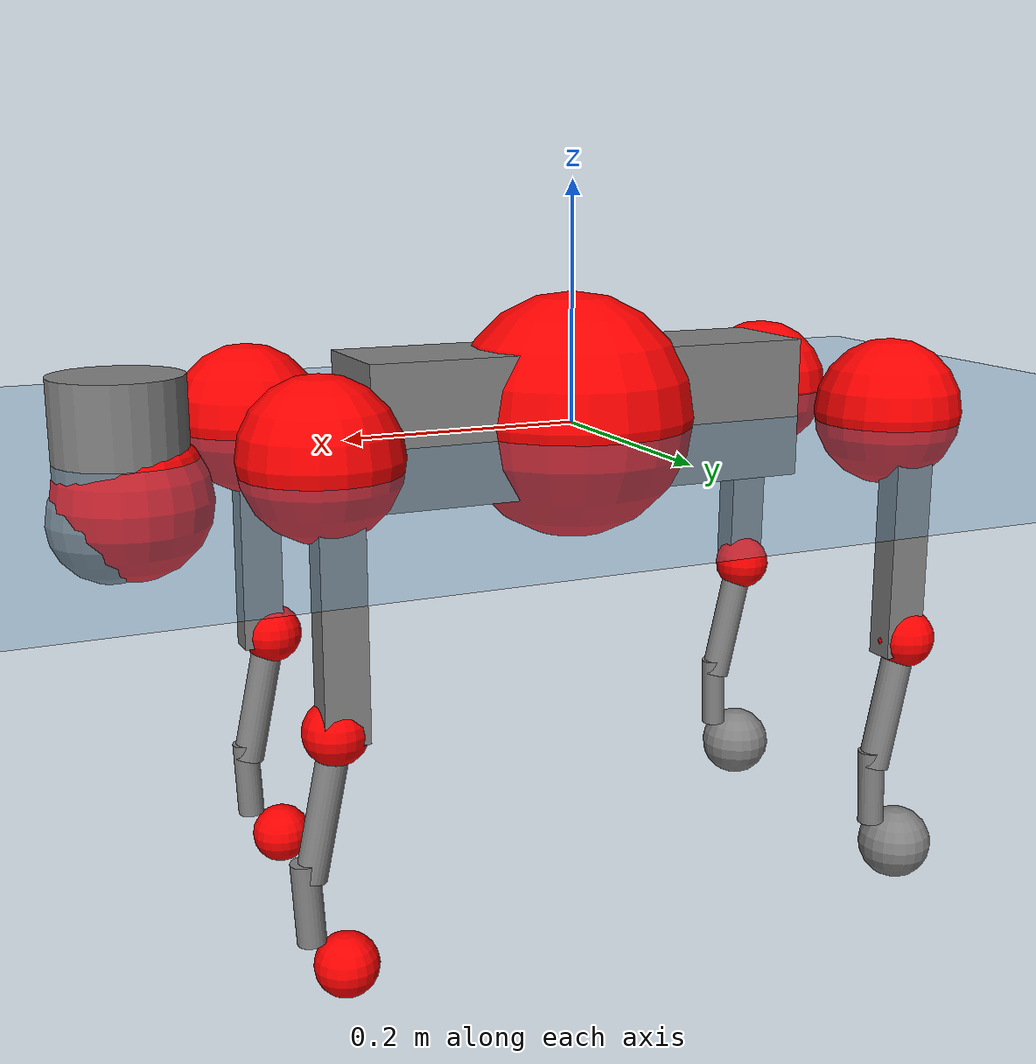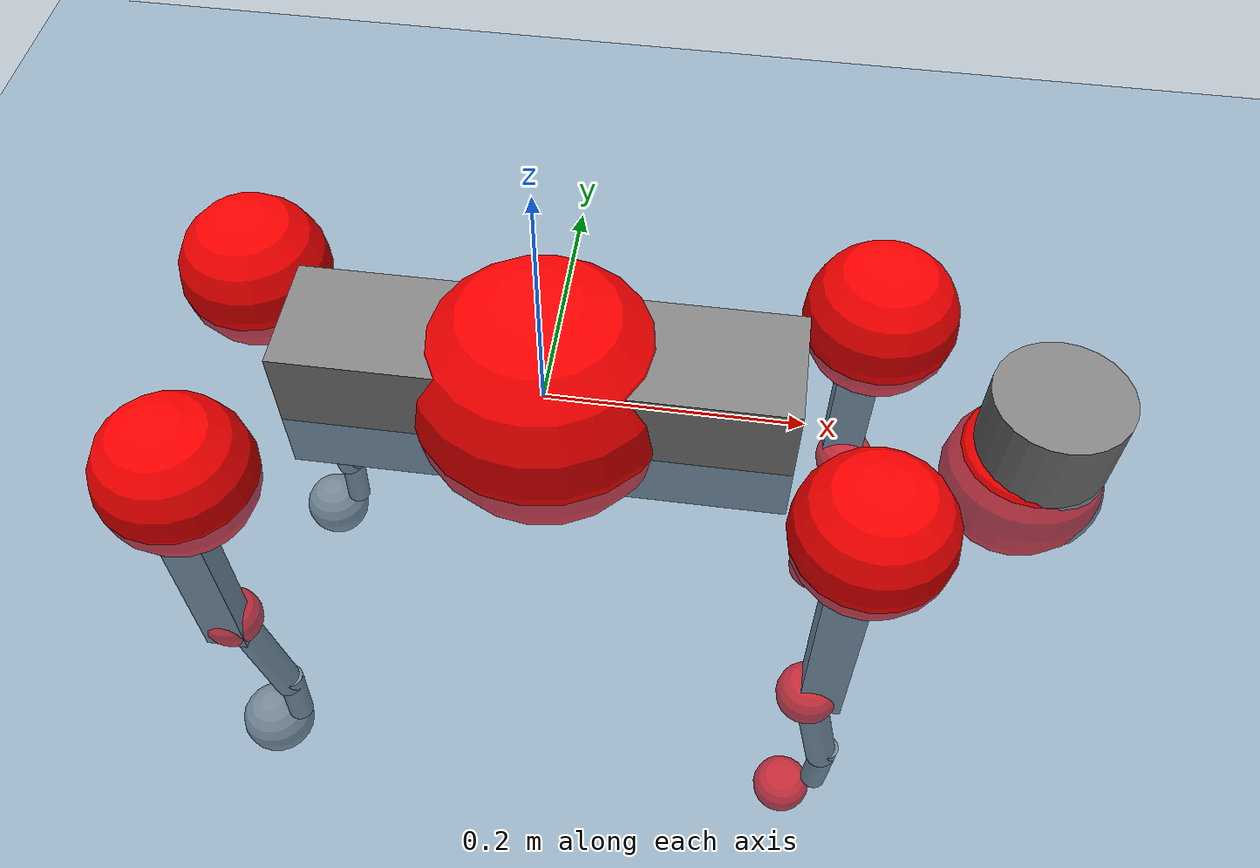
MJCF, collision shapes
<mujoco model="go2">
  <compiler angle="radian" assetdir="assets" balanceinertia="true" inertiafromgeom="false"/>

  <option timestep="0.005" density="1.2" viscosity="2e-05"/>

  <size nkey="1"/>

  <visual>
    <quality shadowsize="8192"/>
    <map shadowclip="0.5"/>
  </visual>

  <default>
    <default class="/">
      <geom contype="0" conaffinity="0" group="1" solref="-1000 -80"/>
      <site size="0.01 0.005 0.005" group="5"/>
      <general forcelimited="true" biastype="affine" gainprm="20" biasprm="0 -20 -0.5"/>
      <default class="go2">
        <joint armature="0.01" damping="0.01" frictionloss="0.2"/>
        <geom condim="1" margin="0.001"/>
        <default class="visual">
          <geom type="mesh" group="2"/>
        </default>
        <default class="collision">
          <geom group="3"/>
          <default class="foot">
            <geom size="0.022 0 0" condim="6" priority="1" friction="0.8 0.02 0.01" solimp="0.015 1 0.022"/>
          </default>
        </default>
        <default class="reward_collision_sphere">
          <geom group="5" rgba="1 0 0 1"/>
        </default>
      </default>
    </default>
  </default>

  <asset>
    <texture type="skybox" colorspace="auto" name="//unnamed_texture_0" builtin="gradient" rgb1="0.95 0.95 0.95" rgb2="0.95 0.95 0.95" width="100" height="600"/>
    <texture type="2d" colorspace="auto" name="texplane" builtin="checker" rgb1="0.345 0.575 0.748" rgb2="0.345 0.575 0.748" markrgb="1 1 1" width="512" height="512"/>
    <material name="MatPlane" class="/" texture="texplane" texuniform="true" texrepeat="2 2" specular="0.9"/>
    <material name="metal" class="/" rgba="0.9 0.95 0.95 1"/>
    <material name="black" class="/" rgba="0 0 0 1"/>
    <material name="white" class="/"/>
    <material name="gray" class="/" rgba="0.671705 0.692426 0.77427 1"/>
    <mesh name="base_0" class="/" file="base_0.obj"/>
    <mesh name="base_1" class="/" file="base_1.obj"/>
    <mesh name="base_2" class="/" file="base_2.obj"/>
    <mesh name="base_3" class="/" file="base_3.obj"/>
    <mesh name="base_4" class="/" file="base_4.obj"/>
    <mesh name="hip_0" class="/" file="hip_0.obj"/>
    <mesh name="hip_1" class="/" file="hip_1.obj"/>
    <mesh name="thigh_0" class="/" file="thigh_0.obj"/>
    <mesh name="thigh_1" class="/" file="thigh_1.obj"/>
    <mesh name="thigh_mirror_0" class="/" file="thigh_mirror_0.obj"/>
    <mesh name="thigh_mirror_1" class="/" file="thigh_mirror_1.obj"/>
    <mesh name="calf_0" class="/" file="calf_0.obj"/>
    <mesh name="calf_1" class="/" file="calf_1.obj"/>
    <mesh name="calf_mirror_0" class="/" file="calf_mirror_0.obj"/>
    <mesh name="calf_mirror_1" class="/" file="calf_mirror_1.obj"/>
    <mesh name="foot" class="/" file="foot.obj"/>
  </asset>

  <worldbody>
    <geom name="floor" class="/" size="100 100 0.125" type="plane" group="0" material="MatPlane"/>
    <light name="toplight_shadow" class="/" pos="0 0 5" dir="0.0990148 0.0990148 -0.990148" type="directional" ambient="0.04 0.04 0.04" diffuse="0.55 0.55 0.55" specular="0.12 0.12 0.12"/>
    <light name="toplight_fill" class="/" pos="0 0 5" dir="0.0990148 0.0990148 -0.990148" type="directional" castshadow="false" ambient="0.04 0.04 0.04" diffuse="0.3 0.3 0.3" specular="0.08 0.08 0.08"/>
    <body name="trunk" childclass="go2" pos="-5.4927e-05 -0.000312315 0.00710072" quat="1 -2.7112e-05 -0.000755745 0.000178547">
      <inertial pos="0.0289993 -0.0109231 -0.0129355" quat="-0.00218408 0.714212 -0.00193682 0.699923" mass="7.93729" diaginertia="0.394493 0.0540027 0.0151105"/>
      <joint name="//unnamed_joint_0" type="free" armature="0" damping="0" frictionloss="0"/>
      <geom name="//unnamed_geom_1" class="visual" material="black" mesh="base_0"/>
      <geom name="//unnamed_geom_2" class="visual" material="black" mesh="base_1"/>
      <geom name="//unnamed_geom_3" class="visual" material="black" mesh="base_2"/>
      <geom name="//unnamed_geom_4" class="visual" material="white" mesh="base_3"/>
      <geom name="//unnamed_geom_5" class="visual" material="gray" mesh="base_4"/>
      <geom name="trunk_1" class="collision" size="0.194097 0.0482404 0.0588172" type="box"/>
      <geom name="trunk_2" class="collision" size="0.051594 0.0464346" pos="0.375474 0 0.00902087" type="cylinder"/>
      <geom name="trunk_3" class="collision" size="0.0484984" pos="0.386013 0 -0.0541252"/>
      <geom name="//unnamed_geom_9" class="reward_collision_sphere" size="0.103188"/>
      <geom name="//unnamed_geom_10" class="reward_collision_sphere" size="0.0619128" pos="0.368887 0 -0.0405939"/>
      <site name="imu" pos="-0.0469336 0.0255525 0.0231368" size="0.0103188"/>
      <camera name="track" pos="0 -1.7522 0" quat="0.707107 0.707107 0 0" mode="trackcom"/>
      <camera name="ego_camera" pos="0.411045 0 0.0405939" quat="-0.5 -0.5 0.5 0.5"/>
      <body name="FL_hip" pos="0.252879 0.0468424 0.00160928" quat="1 0.000602886 -0.000483083 8.7275e-05">
        <inertial pos="0.00218903 0.000173352 0.00469673" quat="0.496612 0.499386 0.505504 0.498454" mass="0.777802" diaginertia="0.00357135 0.000334387 0.000273994"/>
        <joint name="FL_hip_joint" pos="0 0 0" axis="0.999999 -0.00110049 0.000710558" range="-0.972651 1.05649" armature="0.00703991" damping="0" frictionloss="0.297192"/>
        <geom name="//unnamed_geom_11" class="visual" material="metal" mesh="hip_0"/>
        <geom name="//unnamed_geom_12" class="visual" material="gray" mesh="hip_1"/>
        <geom name="//unnamed_geom_13" class="collision" size="0.0474665 0.0206376" pos="0 0.0700881 0" quat="0.707107 0.707107 0 0" type="cylinder"/>
        <geom name="//unnamed_geom_14" class="reward_collision_sphere" size="0.0619128" pos="0 0.0613271 0"/>
        <body name="FL_thigh" pos="-0.00332935 0.0842564 -0.00363215" quat="1 2.7382e-05 -3.38786e-05 6.30758e-05">
          <inertial pos="-0.00643013 -0.0206493 -0.0245158" quat="0.832426 0.08008 -0.0229429 0.547839" mass="1.39508" diaginertia="0.0229717 0.00304063 0.000674138"/>
          <joint name="FL_thigh_joint" pos="0 0 0" axis="0.015787 0.999801 0.0122012" stiffness="0.0118039" range="-1.4445 3.41643" armature="0.00920514" damping="0.0191578" frictionloss="0.214189"/>
          <geom name="//unnamed_geom_15" class="visual" material="metal" mesh="thigh_0"/>
          <geom name="//unnamed_geom_16" class="visual" material="gray" mesh="thigh_1"/>
          <geom name="//unnamed_geom_17" class="collision" size="0.109895 0.0126405 0.017542" pos="0 0 -0.0960722" quat="0.707107 0 0.707107 0" type="box"/>
          <body name="FL_calf" pos="0.00366699 -0.00690273 -0.199899" quat="0.999987 -0.00160849 0.00196099 0.00453425">
            <inertial pos="0.00715098 -0.000838757 -0.12841" quat="0.71065 0.00138581 -0.00447915 0.70353" mass="0.30064" diaginertia="0.00583968 0.000783713 3.52367e-05"/>
            <joint name="FL_calf_joint" pos="0 0 0" axis="0.00314916 0.999959 -0.0085177" stiffness="0.00601129" range="-2.71637 -0.830124" armature="0.0125162" damping="0" frictionloss="0.279954"/>
            <geom name="//unnamed_geom_18" class="visual" material="gray" mesh="calf_0"/>
            <geom name="//unnamed_geom_19" class="visual" material="black" mesh="calf_1"/>
            <geom name="FL_calf0" class="collision" size="0.0123826 0.0619128" pos="0.0105396 0 -0.0541252" quat="0.994493 0 -0.104807 0" type="cylinder"/>
            <geom name="//unnamed_geom_21" class="collision" size="0.0113507 0.0335361" pos="0.026349 0 -0.133509" quat="0.999688 0 0.0249974 0" type="cylinder"/>
            <geom name="//unnamed_geom_22" class="visual" pos="0 0 -0.192144" quat="1 0 0 0" material="black" mesh="foot"/>
            <geom name="FL_foot" class="foot" size="0.0151001" pos="-0.0026349 0 -0.192144"/>
            <geom name="//unnamed_geom_24" class="reward_collision_sphere" size="0.025797"/>
            <geom name="//unnamed_geom_25" class="reward_collision_sphere" size="0.025797" pos="-0.0026349 0 -0.192144"/>
            <site name="FL_foot" class="foot" pos="-0.0026349 0 -0.192144" size="0.0103188"/>
          </body>
        </body>
      </body>
      <body name="FR_hip" pos="0.2524 -0.0353262 -0.000498076" quat="0.999991 -0.000935045 -0.00370761 0.00186524">
        <inertial pos="-0.00699984 -0.00168725 -1.7979e-05" quat="0.494969 0.505292 0.504973 0.494659" mass="0.814535" diaginertia="0.00388404 0.000364767 0.000281887"/>
        <joint name="FR_hip_joint" pos="0 0 0" axis="0.999914 -0.0103624 0.00801497" range="-1.20718 1.25308" armature="0.00944822" damping="0.000422908" frictionloss="0.270176"/>
        <geom name="//unnamed_geom_26" class="visual" pos="0 -2.26372e-10 -9.70954e-09" quat="4.63268e-05 1 0 0" material="metal" mesh="hip_0"/>
        <geom name="//unnamed_geom_27" class="visual" pos="0 -3.66975e-10 2.40154e-08" quat="4.63268e-05 1 0 0" material="gray" mesh="hip_1"/>
        <geom name="//unnamed_geom_28" class="collision" size="0.0474665 0.0206376" pos="0 -0.0700881 0" quat="0.707107 0.707107 0 0" type="cylinder"/>
        <geom name="//unnamed_geom_29" class="reward_collision_sphere" size="0.0619128" pos="0 -0.0613271 0"/>
        <body name="FR_thigh" pos="-0.0116732 -0.0891033 -0.00169448" quat="1 0.00013911 -0.000912145 0.000342464">
          <inertial pos="-0.00266047 0.0193025 -0.0300285" quat="0.556573 -0.0225703 0.0849319 0.826138" mass="1.13591" diaginertia="0.0226607 0.00268123 0.000442751"/>
          <joint name="FR_thigh_joint" pos="0 0 0" axis="-0.0180823 -0.998553 0.0506494" range="-3.73505 1.77752" armature="0.0111424" damping="0.0446755" frictionloss="0.217905"/>
          <geom name="//unnamed_geom_30" class="visual" material="metal" mesh="thigh_mirror_0"/>
          <geom name="//unnamed_geom_31" class="visual" material="gray" mesh="thigh_mirror_1"/>
          <geom name="//unnamed_geom_32" class="collision" size="0.109895 0.0126405 0.017542" pos="0 0 -0.0960722" quat="0.707107 0 0.707107 0" type="box"/>
          <body name="FR_calf" pos="-0.010633 -0.00092418 -0.196933" quat="1 0.00021967 7.52929e-05 -0.000129421">
            <inertial pos="0.0114744 0.00164864 -0.139093" quat="0.702465 0.00168962 0.00875195 0.711662" mass="0.311654" diaginertia="0.00558554 0.000751787 3.15883e-05"/>
            <joint name="FR_calf_joint" pos="0 0 0" axis="-0.0235136 -0.998057 0.0577013" stiffness="0.0153444" range="0.801837 2.89796" armature="0.0108309" damping="0.00729984" frictionloss="0.332686"/>
            <geom name="//unnamed_geom_33" class="visual" material="gray" mesh="calf_mirror_0"/>
            <geom name="//unnamed_geom_34" class="visual" material="black" mesh="calf_mirror_1"/>
            <geom name="FR_calf0" class="collision" size="0.0134144 0.0619128" pos="0.0131745 0 -0.0541252" quat="0.995004 0 -0.0998334 0" type="cylinder"/>
            <geom name="//unnamed_geom_36" class="collision" size="0.0113507 0.0335361" pos="0.026349 0 -0.133509" quat="0.999688 0 0.0249974 0" type="cylinder"/>
            <geom name="//unnamed_geom_37" class="visual" pos="0 0 -0.192144" quat="1 0 0 0" material="black" mesh="foot"/>
            <geom name="FR_foot" class="foot" size="0.0218186" pos="-0.0026349 0 -0.192144"/>
            <geom name="//unnamed_geom_39" class="reward_collision_sphere" size="0.025797"/>
            <geom name="//unnamed_geom_40" class="reward_collision_sphere" size="0.025797" pos="-0.0026349 0 -0.192144"/>
            <site name="FR_foot" class="foot" pos="-0.0026349 0 -0.192144" size="0.0103188"/>
          </body>
        </body>
      </body>
      <body name="RL_hip" pos="-0.253952 0.0332941 2.98109e-05" quat="1 0.000355079 2.86382e-05 0.00021638">
        <inertial pos="0.011581 0.0106963 -0.000283486" quat="0.547752 0.485744 0.451556 0.510017" mass="0.859644" diaginertia="0.00338816 0.000282457 0.000299882"/>
        <joint name="RL_hip_joint" pos="0 0 0" axis="-0.999374 0.00617775 0.0348484" stiffness="0.039186" range="-1.06926 1.13657" armature="0.0106148" damping="0.0389544" frictionloss="0.157703"/>
        <geom name="//unnamed_geom_41" class="visual" pos="-3.61849e-09 0 -7.09308e-07" quat="4.63268e-05 0 1 0" material="metal" mesh="hip_0"/>
        <geom name="//unnamed_geom_42" class="visual" pos="-5.86601e-09 0 -6.29055e-07" quat="4.63268e-05 0 1 0" material="gray" mesh="hip_1"/>
        <geom name="//unnamed_geom_43" class="collision" size="0.0474665 0.0206376" pos="0 0.0700881 0" quat="0.707107 0.707107 0 0" type="cylinder"/>
        <geom name="//unnamed_geom_44" class="reward_collision_sphere" size="0.0619128" pos="0 0.0613271 0"/>
        <body name="RL_thigh" pos="0.00118315 0.0927368 -0.00209841" quat="0.999997 -0.00085447 0.00215079 0.000782116">
          <inertial pos="-0.00231411 -0.0125694 -0.0297761" quat="0.820605 0.0873858 -0.0225722 0.564324" mass="1.21565" diaginertia="0.0206115 0.00278931 0.000430958"/>
          <joint name="RL_thigh_joint" pos="0 0 0" axis="0.00558685 0.999973 0.00479149" range="-0.519927 4.55316" armature="0.0108239" damping="0.0193701" frictionloss="0.208581"/>
          <geom name="//unnamed_geom_45" class="visual" material="metal" mesh="thigh_0"/>
          <geom name="//unnamed_geom_46" class="visual" material="gray" mesh="thigh_1"/>
          <geom name="//unnamed_geom_47" class="collision" size="0.109895 0.0126405 0.017542" pos="0 0 -0.0960722" quat="0.707107 0 0.707107 0" type="box"/>
          <body name="RL_calf" pos="-0.00773202 0.00130316 -0.192937" quat="0.999991 0.00336578 -0.00261864 0.000640983">
            <inertial pos="0.00032837 0.00198924 -0.12088" quat="0.710638 0.00166998 -0.0038812 0.703545" mass="0.249319" diaginertia="0.00510091 0.000553807 2.23824e-05"/>
            <joint name="RL_calf_joint" pos="0 0 0" axis="-0.0199193 0.999548 -0.0225259" stiffness="0.00870712" range="-2.72742 -0.579701" armature="0.0101826" damping="0" frictionloss="0.161344"/>
            <geom name="//unnamed_geom_48" class="visual" material="gray" mesh="calf_0"/>
            <geom name="//unnamed_geom_49" class="visual" material="black" mesh="calf_1"/>
            <geom name="RL_calf0" class="collision" size="0.0134144 0.0619128" pos="0.0131745 0 -0.0541252" quat="0.995004 0 -0.0998334 0" type="cylinder"/>
            <geom name="//unnamed_geom_51" class="collision" size="0.0113507 0.0335361" pos="0.026349 0 -0.133509" quat="0.999688 0 0.0249974 0" type="cylinder"/>
            <geom name="//unnamed_geom_52" class="visual" pos="0 0 -0.192144" quat="1 0 0 0" material="black" mesh="foot"/>
            <geom name="RL_foot" class="foot" size="0.0318102" pos="-0.0026349 0 -0.192144"/>
            <geom name="//unnamed_geom_54" class="reward_collision_sphere" size="0.025797"/>
            <geom name="//unnamed_geom_55" class="reward_collision_sphere" size="0.025797" pos="-0.0026349 0 -0.192144"/>
            <site name="RL_foot" class="foot" pos="-0.0026349 0 -0.192144" size="0.0103188"/>
          </body>
        </body>
      </body>
      <body name="RR_hip" pos="-0.255761 -0.0487014 -0.00631997" quat="0.999989 -0.00284791 -0.00312265 -0.00197995">
        <inertial pos="0.00619167 -0.00610903 0.00377221" quat="0.535519 0.519047 0.466572 0.475521" mass="0.820899" diaginertia="0.0035051 0.000350706 0.000308764"/>
        <joint name="RR_hip_joint" pos="0 0 0" axis="-0.99992 0.0125864 -0.00147004" stiffness="0.0113918" range="-0.86508 1.02381" armature="0.0156696" damping="0.0272649" frictionloss="0.144309"/>
        <geom name="//unnamed_geom_56" class="visual" pos="3.60321e-09 -2.26372e-10 -6.99598e-07" quat="2.14617e-09 4.63268e-05 4.63268e-05 -1" material="metal" mesh="hip_0"/>
        <geom name="//unnamed_geom_57" class="visual" pos="5.9038e-09 -3.66975e-10 -6.5307e-07" quat="2.14617e-09 4.63268e-05 4.63268e-05 -1" material="gray" mesh="hip_1"/>
        <geom name="//unnamed_geom_58" class="collision" size="0.0474665 0.0206376" pos="0 -0.0700881 0" quat="0.707107 0.707107 0 0" type="cylinder"/>
        <geom name="//unnamed_geom_59" class="reward_collision_sphere" size="0.0619128" pos="0 -0.0613271 0"/>
        <body name="RR_thigh" pos="4.84444e-06 -0.0851357 0.0109397" quat="1 3.28465e-06 -4.59502e-06 9.81088e-06">
          <inertial pos="-0.00436441 0.00706455 -0.0348426" quat="0.539316 -0.0436519 0.0556458 0.839129" mass="1.44517" diaginertia="0.0268403 0.00341296 0.000600315"/>
          <joint name="RR_thigh_joint" pos="0 0 0" axis="-0.020057 -0.999535 -0.0229467" range="-4.60838 0.732653" armature="0.003401" damping="0" frictionloss="0.183586"/>
          <geom name="//unnamed_geom_60" class="visual" material="metal" mesh="thigh_mirror_0"/>
          <geom name="//unnamed_geom_61" class="visual" material="gray" mesh="thigh_mirror_1"/>
          <geom name="//unnamed_geom_62" class="collision" size="0.109895 0.0126405 0.017542" pos="0 0 -0.0960722" quat="0.707107 0 0.707107 0" type="box"/>
          <body name="RR_calf" pos="0.00134716 0.00813227 -0.192909" quat="0.999993 -0.00245736 -0.00192039 -0.00200775">
            <inertial pos="0.00379309 -0.00126816 -0.129713" quat="0.665034 -0.0130749 -0.015667 0.746534" mass="0.315496" diaginertia="0.00621125 0.000819714 2.83156e-05"/>
            <joint name="RR_calf_joint" pos="0 0 0" axis="-0.0437924 -0.998752 -0.0240302" range="0.672613 2.52863" armature="0.00966499" damping="0" frictionloss="0.20685"/>
            <geom name="//unnamed_geom_63" class="visual" material="gray" mesh="calf_mirror_0"/>
            <geom name="//unnamed_geom_64" class="visual" material="black" mesh="calf_mirror_1"/>
            <geom name="RR_calf0" class="collision" size="0.0134144 0.0619128" pos="0.0131745 0 -0.0541252" quat="0.995004 0 -0.0998334 0" type="cylinder"/>
            <geom name="//unnamed_geom_66" class="collision" size="0.0113507 0.0335361" pos="0.026349 0 -0.133509" quat="0.999688 0 0.0249974 0" type="cylinder"/>
            <geom name="//unnamed_geom_67" class="visual" pos="0 0 -0.192144" quat="1 0 0 0" material="black" mesh="foot"/>
            <geom name="RR_foot" class="foot" size="0.0330957" pos="-0.0026349 0 -0.192144"/>
            <geom name="//unnamed_geom_69" class="reward_collision_sphere" size="0.025797"/>
            <geom name="//unnamed_geom_70" class="reward_collision_sphere" size="0.025797" pos="-0.0026349 0 -0.192144"/>
            <site name="RR_foot" class="foot" pos="-0.0026349 0 -0.192144" size="0.0103188"/>
          </body>
        </body>
      </body>
    </body>
  </worldbody>

  <contact>
    <pair class="/" geom1="floor" geom2="FL_foot" name="//unnamed_contact_0"/>
    <pair class="/" geom1="floor" geom2="FR_foot" name="//unnamed_contact_1"/>
    <pair class="/" geom1="floor" geom2="RL_foot" name="//unnamed_contact_2"/>
    <pair class="/" geom1="floor" geom2="RR_foot" name="//unnamed_contact_3"/>
  </contact>

  <actuator>
    <general name="FL_hip" class="/" joint="FL_hip_joint" forcerange="-29.2715 29.2715" gainprm="15.1727" biasprm="0 -15.1727 -0.469115"/>
    <general name="FL_thigh" class="/" joint="FL_thigh_joint" forcerange="-35.581 35.581" gainprm="15.1727" biasprm="0 -15.1727 -0.469115"/>
    <general name="FL_calf" class="/" joint="FL_calf_joint" forcerange="-44.2533 44.2533" gainprm="15.1727" biasprm="0 -15.1727 -0.469115"/>
    <general name="FR_hip" class="/" joint="FR_hip_joint" forcerange="-26.3656 26.3656" gainprm="15.1727" biasprm="0 -15.1727 -0.469115"/>
    <general name="FR_thigh" class="/" joint="FR_thigh_joint" forcerange="-21.942 21.942" gainprm="15.1727" biasprm="0 -15.1727 -0.469115"/>
    <general name="FR_calf" class="/" joint="FR_calf_joint" forcerange="-53.996 53.996" gainprm="15.1727" biasprm="0 -15.1727 -0.469115"/>
    <general name="RL_hip" class="/" joint="RL_hip_joint" forcerange="-18.5296 18.5296" gainprm="15.1727" biasprm="0 -15.1727 -0.469115"/>
    <general name="RL_thigh" class="/" joint="RL_thigh_joint" forcerange="-24.3574 24.3574" gainprm="15.1727" biasprm="0 -15.1727 -0.469115"/>
    <general name="RL_calf" class="/" joint="RL_calf_joint" forcerange="-55.3546 55.3546" gainprm="15.1727" biasprm="0 -15.1727 -0.469115"/>
    <general name="RR_hip" class="/" joint="RR_hip_joint" forcerange="-35.3545 35.3545" gainprm="15.1727" biasprm="0 -15.1727 -0.469115"/>
    <general name="RR_thigh" class="/" joint="RR_thigh_joint" forcerange="-24.8398 24.8398" gainprm="15.1727" biasprm="0 -15.1727 -0.469115"/>
    <general name="RR_calf" class="/" joint="RR_calf_joint" forcerange="-48.5717 48.5717" gainprm="15.1727" biasprm="0 -15.1727 -0.469115"/>
  </actuator>

  <sensor>
    <gyro site="imu" name="imu_angular_velocity"/>
    <velocimeter site="imu" name="imu_linear_velocity"/>
    <framelinvel objtype="site" objname="FL_foot" name="FL_foot_global_linear_velocity"/>
    <framelinvel objtype="site" objname="FR_foot" name="FR_foot_global_linear_velocity"/>
    <framelinvel objtype="site" objname="RL_foot" name="RL_foot_global_linear_velocity"/>
    <framelinvel objtype="site" objname="RR_foot" name="RR_foot_global_linear_velocity"/>
  </sensor>

  <keyframe>
    <key name="home" qpos="0 0 0.325 1 0 0 0 0.1 0.8 -1.5 -0.1 -0.8 1.5 -0.1 0.8 -1.5 0.1 -0.8 1.5"/>
  </keyframe>
</mujoco>
